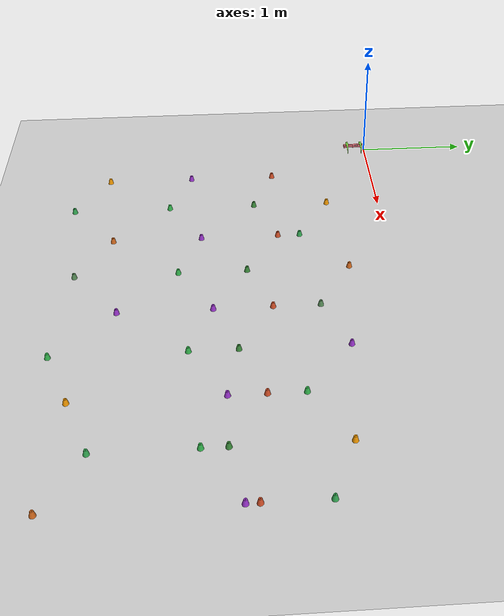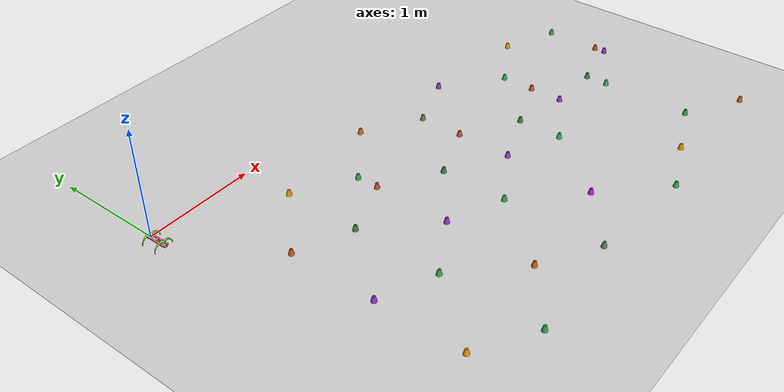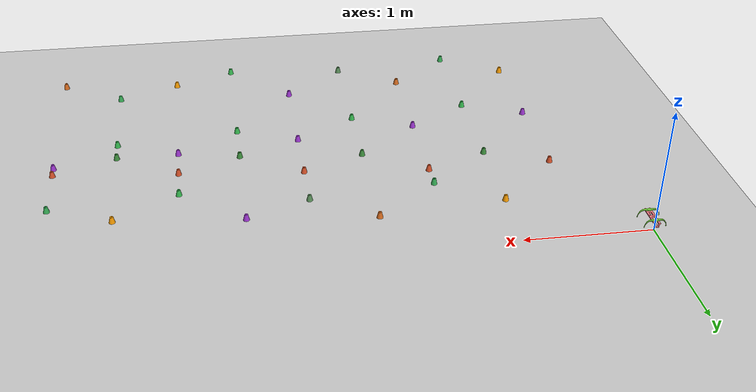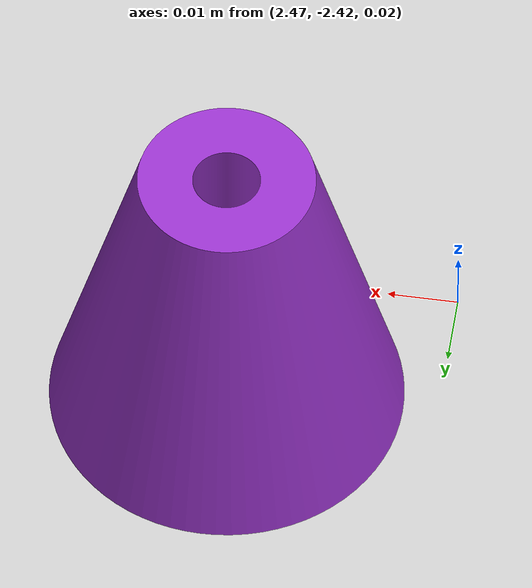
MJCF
<mujoco model="robot_with_weave_poles">
    <compiler angle="radian" coordinate="local"/>
    <option gravity="0 0 -9.81" timestep="0.001"/>

    <asset>
        <!-- Robot assets -->
        <mesh name="controller_torso" file="/projectnb/rlvn/students/rampal11/PATRIQ/EC518-Bark9/envs/PATRIQ/controller_torso.stl" scale="0.001 0.001 0.001"/>
        <mesh name="motor_torso" file="/projectnb/rlvn/students/rampal11/PATRIQ/EC518-Bark9/envs/PATRIQ/motor_torso.stl" scale="0.001 0.001 0.001"/>
        <mesh name="legs" file="/projectnb/rlvn/students/rampal11/PATRIQ/EC518-Bark9/envs/PATRIQ/legs.stl" scale="0.001 0.001 0.001"/>

        <!-- Weave Pole assets -->
        <mesh name="weave_pole" file="/projectnb/rlvn/students/rampal11/PATRIQ/EC518-Bark9/envs/google_barkour_v0/assets/cone1__1default.stl"/>

        <!-- Ground material -->
        <texture name="grid" type="2d" builtin="checker" width="512" height="512" rgb1="0.9 0.9 0.9" rgb2="0.7 0.7 0.7"/>
        <material name="grid" texture="grid" texrepeat="5 5" reflectance="0.2"/>
    </asset>

    <worldbody>
        <!-- Ground Plane -->
        <geom name="floor" type="plane" pos="0 0 0" size="0 0 0.25" material="grid"/>

        <!-- Robot -->
        <body name="controller_torso_body" pos="0 0 0.05" euler="-1.57 3.14 0">
            <joint name="FLOATING" type="free"/>
            <geom type="mesh" mesh="controller_torso" rgba="1.0 0.502 0.545 1"/>

            <!-- Motor torso -->
            <body name="motor_torso_body" pos="0 0 0.11">
                <joint name="z_rotation_joint" type="hinge" axis="0 0 1" pos="0.025 0.02 0" range="-1.57 1.57" damping="0.05"/>
                <geom type="mesh" mesh="motor_torso" rgba="1.0 0.502 0.545 1"/>

                <!-- Back Leg -->
                <body name="back_leg" pos="-0.065 0.0497 0.08" euler="3.14 0 0">
                    <joint axis="0 1 0" damping="0.05" name="LEG2" pos="0.088 0.02 0.015" range="-1.5707963 1.5707963" type="hinge"/>
                    <geom type="mesh" mesh="legs" rgba="0.471 0.824 0.243 1"/>
                </body>
            </body>

            <!-- Front Leg -->
            <body name="front_leg" pos="-0.065 0.0497 0.05" euler="3.14 0 0">
                <joint axis="0 1 0" damping="0.05" name="LEG1" pos="0.088 0.02 0.015" range="-1.5707963 1.5707963" type="hinge"/>
                <geom type="mesh" mesh="legs" rgba="0.471 0.824 0.243 1"/>
            </body>
        </body>

        <!-- Weave Poles -->

        <geom pos="1.0 -0.5 0.02" quat="0 0 -1 0" type="mesh" mesh="weave_pole" rgba="0.945 0.597 0 1"/>
        <geom pos="1.5 -0.8 0.02" quat="0 0 -1 0" type="mesh" mesh="weave_pole" rgba="0.203 0.656 0.324 1"/>
        <geom pos="2.0 -0.4 0.02" quat="0 0 -1 0" type="mesh" mesh="weave_pole" rgba="0.824 0.412 0.118 1"/>
        <geom pos="2.5 -0.7 0.02" quat="0 0 -1 0" type="mesh" mesh="weave_pole" rgba="0.341 0.545 0.341 1"/>
        <geom pos="3.0 -0.5 0.02" quat="0 0 -1 0" type="mesh" mesh="weave_pole" rgba="0.6 0.2 0.8 1"/>
        <geom pos="3.5 -0.9 0.02" quat="0 0 -1 0" type="mesh" mesh="weave_pole" rgba="0.2 0.7 0.3 1"/>
        <geom pos="4.0 -0.6 0.02" quat="0 0 -1 0" type="mesh" mesh="weave_pole" rgba="0.945 0.597 0 1"/>
        <geom pos="4.5 -0.8 0.02" quat="0 0 -1 0" type="mesh" mesh="weave_pole" rgba="0.203 0.656 0.324 1"/>

        <geom pos="0.5 -1.0 0.02" quat="0 0 -1 0" type="mesh" mesh="weave_pole" rgba="0.824 0.314 0.157 1"/>
        <geom pos="1.0 -1.2 0.02" quat="0 0 -1 0" type="mesh" mesh="weave_pole" rgba="0.231 0.545 0.231 1"/>
        <geom pos="1.5 -1.0 0.02" quat="0 0 -1 0" type="mesh" mesh="weave_pole" rgba="0.824 0.314 0.157 1"/>
        <geom pos="2.0 -1.3 0.02" quat="0 0 -1 0" type="mesh" mesh="weave_pole" rgba="0.231 0.545 0.231 1"/>
        <geom pos="2.5 -1.1 0.02" quat="0 0 -1 0" type="mesh" mesh="weave_pole" rgba="0.824 0.314 0.157 1"/>
        <geom pos="3.0 -1.4 0.02" quat="0 0 -1 0" type="mesh" mesh="weave_pole" rgba="0.231 0.545 0.231 1"/>
        <geom pos="3.5 -1.2 0.02" quat="0 0 -1 0" type="mesh" mesh="weave_pole" rgba="0.824 0.314 0.157 1"/>
        <geom pos="4.0 -1.5 0.02" quat="0 0 -1 0" type="mesh" mesh="weave_pole" rgba="0.231 0.545 0.231 1"/>
        <geom pos="4.5 -1.3 0.02" quat="0 0 -1 0" type="mesh" mesh="weave_pole" rgba="0.824 0.314 0.157 1"/>

        <geom pos="0.5 -1.8 0.02" quat="0 0 -1 0" type="mesh" mesh="weave_pole" rgba="0.6 0.2 0.8 1"/>
        <geom pos="1.0 -2.0 0.02" quat="0 0 -1 0" type="mesh" mesh="weave_pole" rgba="0.2 0.7 0.3 1"/>
        <geom pos="1.5 -1.7 0.02" quat="0 0 -1 0" type="mesh" mesh="weave_pole" rgba="0.6 0.2 0.8 1"/>
        <geom pos="2.0 -1.9 0.02" quat="0 0 -1 0" type="mesh" mesh="weave_pole" rgba="0.2 0.7 0.3 1"/>
        <geom pos="2.5 -1.6 0.02" quat="0 0 -1 0" type="mesh" mesh="weave_pole" rgba="0.6 0.2 0.8 1"/>
        <geom pos="3.0 -1.8 0.02" quat="0 0 -1 0" type="mesh" mesh="weave_pole" rgba="0.2 0.7 0.3 1"/>
        <geom pos="3.5 -1.5 0.02" quat="0 0 -1 0" type="mesh" mesh="weave_pole" rgba="0.6 0.2 0.8 1"/>
        <geom pos="4.0 -1.7 0.02" quat="0 0 -1 0" type="mesh" mesh="weave_pole" rgba="0.2 0.7 0.3 1"/>
        <geom pos="4.5 -1.4 0.02" quat="0 0 -1 0" type="mesh" mesh="weave_pole" rgba="0.6 0.2 0.8 1"/>

        <geom pos="0.5 -2.6 0.02" quat="0 0 -1 0" type="mesh" mesh="weave_pole" rgba="0.945 0.597 0 1"/>
        <geom pos="1.0 -2.9 0.02" quat="0 0 -1 0" type="mesh" mesh="weave_pole" rgba="0.203 0.656 0.324 1"/>
        <geom pos="1.5 -2.5 0.02" quat="0 0 -1 0" type="mesh" mesh="weave_pole" rgba="0.824 0.412 0.118 1"/>
        <geom pos="2.0 -2.8 0.02" quat="0 0 -1 0" type="mesh" mesh="weave_pole" rgba="0.341 0.545 0.341 1"/>
        <geom pos="2.5 -2.4 0.02" quat="0 0 -1 0" type="mesh" mesh="weave_pole" rgba="0.6 0.2 0.8 1"/>
        <geom pos="3.0 -2.9 0.02" quat="0 0 -1 0" type="mesh" mesh="weave_pole" rgba="0.2 0.7 0.3 1"/>
        <geom pos="3.5 -2.7 0.02" quat="0 0 -1 0" type="mesh" mesh="weave_pole" rgba="0.945 0.597 0 1"/>
        <geom pos="4.0 -2.5 0.02" quat="0 0 -1 0" type="mesh" mesh="weave_pole" rgba="0.203 0.656 0.324 1"/>
        <geom pos="4.5 -2.8 0.02" quat="0 0 -1 0" type="mesh" mesh="weave_pole" rgba="0.824 0.412 0.118 1"/>

        <!-- Light -->
        <light name="main_light" pos="0 0 5" dir="0 0 -1" diffuse="1 1 1" specular="0.3 0.3 0.3" directional="true"/>
    </worldbody>

    <!-- Actuators -->
    <actuator>
        <motor joint="z_rotation_joint" name="z_rotation_joint_act"/>
        <motor joint="LEG1" name="LEG1_act"/>
        <motor joint="LEG2" name="LEG2_act"/>
    </actuator>
</mujoco>
